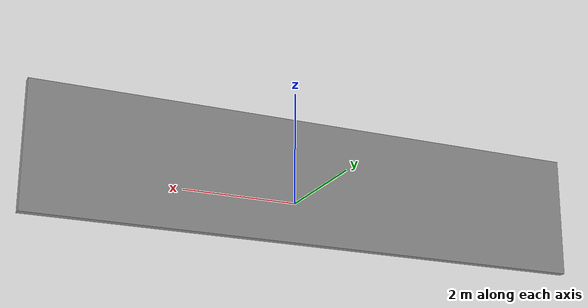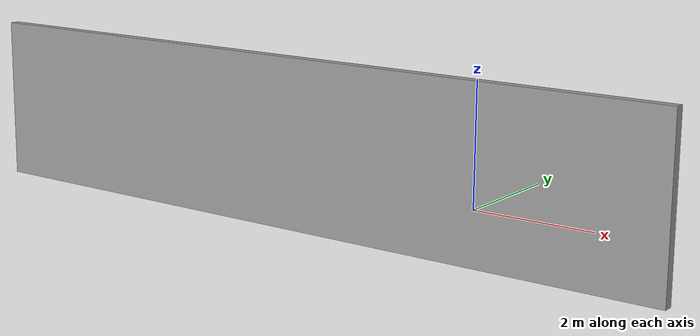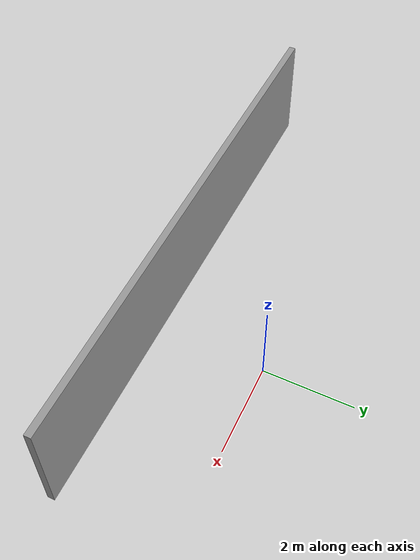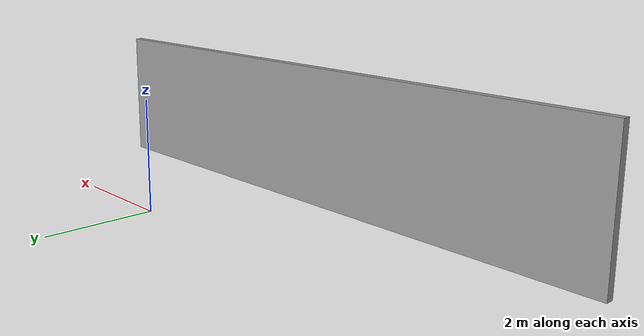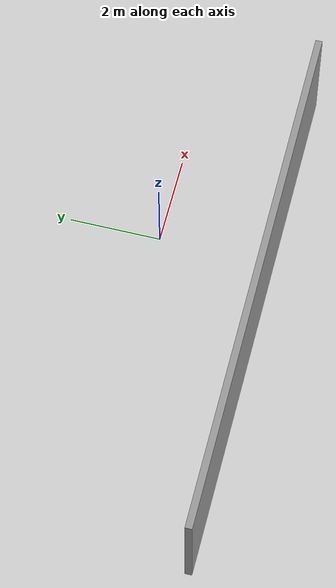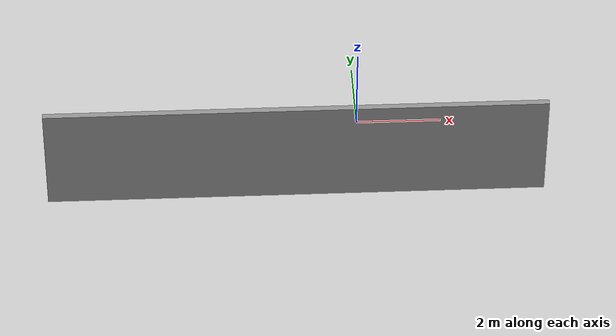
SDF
<?xml version='1.0'?>
<sdf version='1.7'>
  <model name='large_wall'>
    <pose>-1.545 -1.2725 0 0 -0 0</pose>
    <link name='Wall_1'>
      <collision name='Wall_1_Collision'>
        <geometry>
          <box>
            <size>11.5 0.15 2.5</size>
          </box>
        </geometry>
        <pose>0 0 1.25 0 -0 0</pose>
      </collision>
      <visual name='Wall_1_Visual'>
        <pose>0 0 1.25 0 -0 0</pose>
        <geometry>
          <box>
            <size>11.5 0.15 2.5</size>
          </box>
        </geometry>
        <material>
          <script>
            <uri>file://media/materials/scripts/gazebo.material</uri>
            <name>Gazebo/Grey</name>
          </script>
          <ambient>1 1 1 1</ambient>
        </material>
        <meta>
          <layer>0</layer>
        </meta>
      </visual>
      <pose>0 -1.1975 0 0 -0 3.14159</pose>
    </link>
    <static>1</static>
  </model>
</sdf>
